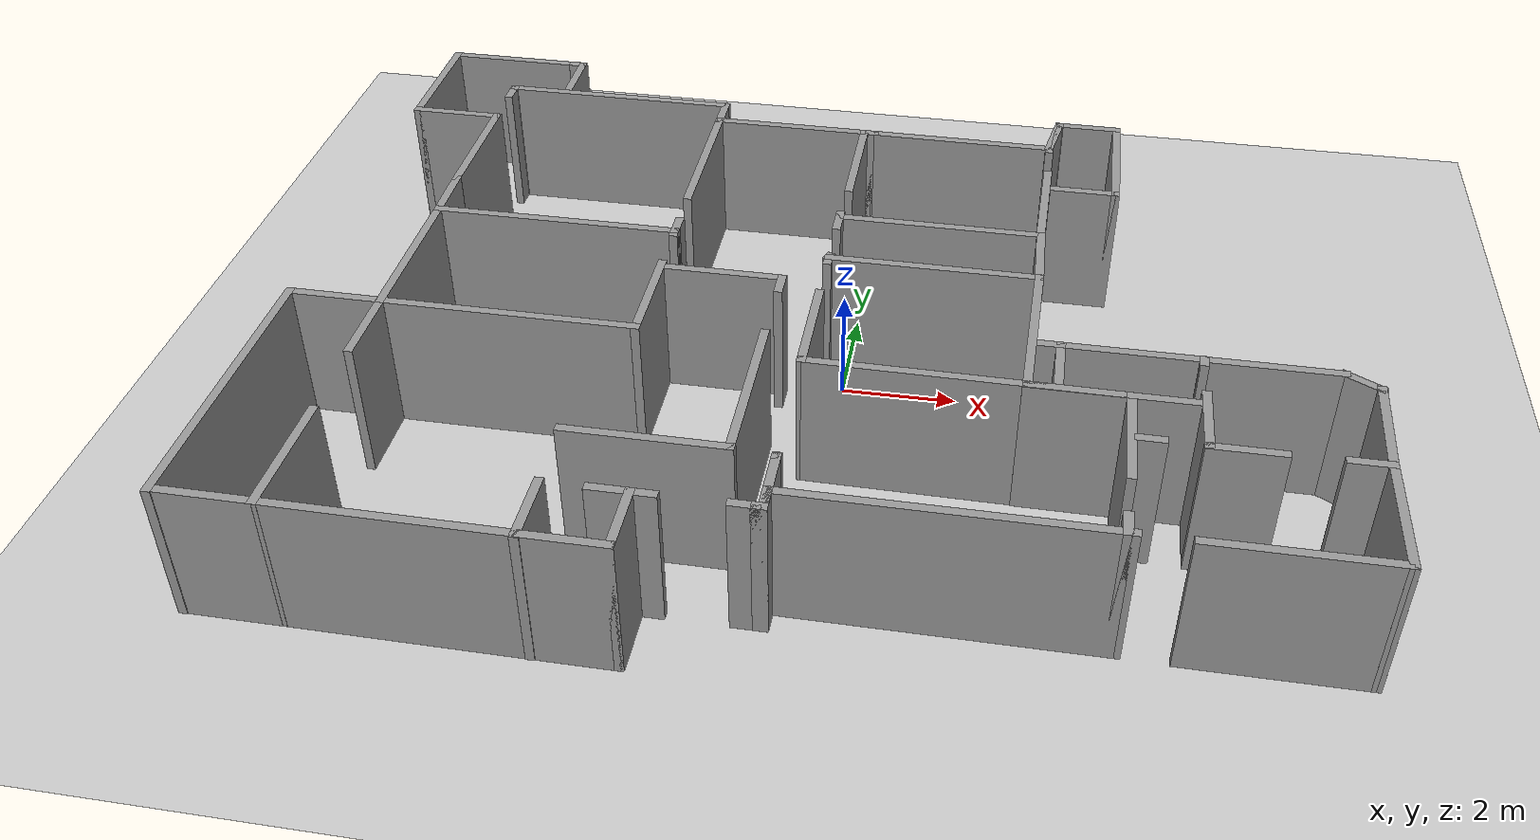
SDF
<sdf version="1.9">
 <world name="default">
  <model name="ground_plane">
   <static>true</static>
   <link name="link">
    <collision name="collision">
     <geometry><plane><normal>0 0 1</normal><size>100 100</size></plane></geometry>
     <surface><friction><ode><mu>100</mu><mu2>50</mu2></ode></friction></surface>
    </collision>
    <visual name="visual">
     <cast_shadows>false</cast_shadows>
     <geometry><plane><normal>0 0 1</normal><size>100 100</size></plane></geometry>
     <material>
      <script><uri>file://media/materials/scripts/gazebo.material</uri><name>Gazebo/Grey</name></script>
     </material>
    </visual>
   </link>
  </model>
  <model name="Escritorio_MA">
   <pose>-0.24854000000000001 -0.16017000000000001 0 0 0 0</pose>
   <link name="Wall_1">
    <collision name="Wall_1_Collision">
     <geometry><box><size>3.7043900000000001 0.14999999999999999 2.5</size></box></geometry>
     <pose>0 0 1.25 0 0 0</pose>
    </collision>
    <visual name="Wall_1_Visual">
     <pose>0 0 1.25 0 0 0</pose>
     <geometry><box><size>3.7043900000000001 0.14999999999999999 2.5</size></box></geometry>
     <material>
      <script><uri>file://media/materials/scripts/gazebo.material</uri><name>Gazebo/Grey</name></script>
      <ambient>1 1 1 1</ambient>
     </material>
    </visual>
    <pose>1.66391 -2.2454200000000002 0 0 0 -0.0065599999999999999</pose>
   </link>
   <link name="Wall_10">
    <collision name="Wall_10_Collision">
     <geometry><box><size>0.5 0.14999999999999999 2.5</size></box></geometry>
     <pose>0 0 1.25 0 0 0</pose>
    </collision>
    <visual name="Wall_10_Visual">
     <pose>0 0 1.25 0 0 0</pose>
     <geometry><box><size>0.5 0.14999999999999999 2.5</size></box></geometry>
     <material>
      <script><uri>file://media/materials/scripts/gazebo.material</uri><name>Gazebo/Grey</name></script>
      <ambient>1 1 1 1</ambient>
     </material>
    </visual>
    <pose>-0.113251 1.7912399999999999 0 0 0 -1.5708</pose>
   </link>
   <link name="Wall_100">
    <collision name="Wall_100_Collision">
     <geometry><box><size>0.5 0.14999999999999999 2.5</size></box></geometry>
     <pose>0 0 1.25 0 0 0</pose>
    </collision>
    <visual name="Wall_100_Visual">
     <pose>0 0 1.25 0 0 0</pose>
     <geometry><box><size>0.5 0.14999999999999999 2.5</size></box></geometry>
     <material>
      <script><uri>file://media/materials/scripts/gazebo.material</uri><name>Gazebo/Grey</name></script>
      <ambient>1 1 1 1</ambient>
     </material>
    </visual>
    <pose>5.00115 -5.1295099999999998 0 0 0 1.5708</pose>
   </link>
   <link name="Wall_102">
    <collision name="Wall_102_Collision">
     <geometry><box><size>2 0.14999999999999999 2.5</size></box></geometry>
     <pose>0 0 1.25 0 0 0</pose>
    </collision>
    <visual name="Wall_102_Visual">
     <pose>0 0 1.25 0 0 0</pose>
     <geometry><box><size>2 0.14999999999999999 2.5</size></box></geometry>
     <material>
      <script><uri>file://media/materials/scripts/gazebo.material</uri><name>Gazebo/Grey</name></script>
      <ambient>1 1 1 1</ambient>
     </material>
    </visual>
    <pose>5.0410599999999999 -3.1972 0 0 0 1.5708</pose>
   </link>
   <link name="Wall_103">
    <collision name="Wall_103_Collision">
     <geometry><box><size>1.75007 0.14999999999999999 2.5</size></box></geometry>
     <pose>0 0 1.25 0 0 0</pose>
    </collision>
    <visual name="Wall_103_Visual">
     <pose>0 0 1.25 0 0 0</pose>
     <geometry><box><size>1.75007 0.14999999999999999 2.5</size></box></geometry>
     <material>
      <script><uri>file://media/materials/scripts/gazebo.material</uri><name>Gazebo/Grey</name></script>
      <ambient>1 1 1 1</ambient>
     </material>
    </visual>
    <pose>4.2410600000000001 -2.26464 0 0 0 3.1321400000000001</pose>
   </link>
   <link name="Wall_104">
    <collision name="Wall_104_Collision">
     <geometry><box><size>1.75 0.14999999999999999 2.5</size></box></geometry>
     <pose>0 0 1.25 0 0 0</pose>
    </collision>
    <visual name="Wall_104_Visual">
     <pose>0 0 1.25 0 0 0</pose>
     <geometry><box><size>1.75 0.14999999999999999 2.5</size></box></geometry>
     <material>
      <script><uri>file://media/materials/scripts/gazebo.material</uri><name>Gazebo/Grey</name></script>
      <ambient>1 1 1 1</ambient>
     </material>
    </visual>
    <pose>4.2410600000000001 -2.2722000000000002 0 0 0 0</pose>
   </link>
   <link name="Wall_105">
    <collision name="Wall_105_Collision">
     <geometry><box><size>0.14999999999999999 0.14999999999999999 2.5</size></box></geometry>
     <pose>0 0 1.25 0 0 0</pose>
    </collision>
    <visual name="Wall_105_Visual">
     <pose>0 0 1.25 0 0 0</pose>
     <geometry><box><size>0.14999999999999999 0.14999999999999999 2.5</size></box></geometry>
     <material>
      <script><uri>file://media/materials/scripts/gazebo.material</uri><name>Gazebo/Grey</name></script>
      <ambient>1 1 1 1</ambient>
     </material>
    </visual>
    <pose>5.0410599999999999 -2.2722000000000002 0 0 0 0</pose>
   </link>
   <link name="Wall_107">
    <collision name="Wall_107_Collision">
     <geometry><box><size>0.25 0.14999999999999999 2.5</size></box></geometry>
     <pose>0 0 1.25 0 0 0</pose>
    </collision>
    <visual name="Wall_107_Visual">
     <pose>0 0 1.25 0 0 0</pose>
     <geometry><box><size>0.25 0.14999999999999999 2.5</size></box></geometry>
     <material>
      <script><uri>file://media/materials/scripts/gazebo.material</uri><name>Gazebo/Grey</name></script>
      <ambient>1 1 1 1</ambient>
     </material>
    </visual>
    <pose>5.0511499999999998 -5.3045099999999996 0 0 0 0</pose>
   </link>
   <link name="Wall_109">
    <collision name="Wall_109_Collision">
     <geometry><box><size>3 0.14999999999999999 2.5</size></box></geometry>
     <pose>0 0 1.25 0 0 0</pose>
    </collision>
    <visual name="Wall_109_Visual">
     <pose>0 0 1.25 0 0 0</pose>
     <geometry><box><size>3 0.14999999999999999 2.5</size></box></geometry>
     <material>
      <script><uri>file://media/materials/scripts/gazebo.material</uri><name>Gazebo/Grey</name></script>
      <ambient>1 1 1 1</ambient>
     </material>
    </visual>
    <pose>7.40069 -5.3172699999999997 0 0 0 0</pose>
   </link>
   <link name="Wall_110">
    <collision name="Wall_110_Collision">
     <geometry><box><size>2.2197499999999999 0.14999999999999999 2.5</size></box></geometry>
     <pose>0 0 1.25 0 0 0</pose>
    </collision>
    <visual name="Wall_110_Visual">
     <pose>0 0 1.25 0 0 0</pose>
     <geometry><box><size>2.2197499999999999 0.14999999999999999 2.5</size></box></geometry>
     <material>
      <script><uri>file://media/materials/scripts/gazebo.material</uri><name>Gazebo/Grey</name></script>
      <ambient>1 1 1 1</ambient>
     </material>
    </visual>
    <pose>8.8162400000000005 -4.2824400000000002 0 0 0 1.5799300000000001</pose>
   </link>
   <link name="Wall_111">
    <collision name="Wall_111_Collision">
     <geometry><box><size>0.75 0.14999999999999999 2.5</size></box></geometry>
     <pose>0 0 1.25 0 0 0</pose>
    </collision>
    <visual name="Wall_111_Visual">
     <pose>0 0 1.25 0 0 0</pose>
     <geometry><box><size>0.75 0.14999999999999999 2.5</size></box></geometry>
     <material>
      <script><uri>file://media/materials/scripts/gazebo.material</uri><name>Gazebo/Grey</name></script>
      <ambient>1 1 1 1</ambient>
     </material>
    </visual>
    <pose>8.5067900000000005 -3.2476099999999999 0 0 0 3.1415899999999999</pose>
   </link>
   <link name="Wall_113">
    <collision name="Wall_113_Collision">
     <geometry><box><size>1.25 0.14999999999999999 2.5</size></box></geometry>
     <pose>0 0 1.25 0 0 0</pose>
    </collision>
    <visual name="Wall_113_Visual">
     <pose>0 0 1.25 0 0 0</pose>
     <geometry><box><size>1.25 0.14999999999999999 2.5</size></box></geometry>
     <material>
      <script><uri>file://media/materials/scripts/gazebo.material</uri><name>Gazebo/Grey</name></script>
      <ambient>1 1 1 1</ambient>
     </material>
    </visual>
    <pose>6.7285300000000001 -3.2660200000000001 0 0 0 3.1415899999999999</pose>
   </link>
   <link name="Wall_115">
    <collision name="Wall_115_Collision">
     <geometry><box><size>0.5 0.14999999999999999 2.5</size></box></geometry>
     <pose>0 0 1.25 0 0 0</pose>
    </collision>
    <visual name="Wall_115_Visual">
     <pose>0 0 1.25 0 0 0</pose>
     <geometry><box><size>0.5 0.14999999999999999 2.5</size></box></geometry>
     <material>
      <script><uri>file://media/materials/scripts/gazebo.material</uri><name>Gazebo/Grey</name></script>
      <ambient>1 1 1 1</ambient>
     </material>
    </visual>
    <pose>5.3307099999999998 -3.2433999999999998 0 0 0 0</pose>
   </link>
   <link name="Wall_117">
    <collision name="Wall_117_Collision">
     <geometry><box><size>1.25 0.14999999999999999 2.5</size></box></geometry>
     <pose>0 0 1.25 0 0 0</pose>
    </collision>
    <visual name="Wall_117_Visual">
     <pose>0 0 1.25 0 0 0</pose>
     <geometry><box><size>1.25 0.14999999999999999 2.5</size></box></geometry>
     <material>
      <script><uri>file://media/materials/scripts/gazebo.material</uri><name>Gazebo/Grey</name></script>
      <ambient>1 1 1 1</ambient>
     </material>
    </visual>
    <pose>3.9189799999999999 -1.72001 0 0 0 1.5708</pose>
   </link>
   <link name="Wall_118">
    <collision name="Wall_118_Collision">
     <geometry><box><size>4.5618600000000002 0.14999999999999999 2.5</size></box></geometry>
     <pose>0 0 1.25 0 0 0</pose>
    </collision>
    <visual name="Wall_118_Visual">
     <pose>0 0 1.25 0 0 0</pose>
     <geometry><box><size>4.5618600000000002 0.14999999999999999 2.5</size></box></geometry>
     <material>
      <script><uri>file://media/materials/scripts/gazebo.material</uri><name>Gazebo/Grey</name></script>
      <ambient>1 1 1 1</ambient>
     </material>
    </visual>
    <pose>6.1249099999999999 -1.17038 0 0 0 -0.00016699999999999997</pose>
   </link>
   <link name="Wall_119">
    <collision name="Wall_119_Collision">
     <geometry><box><size>0.75 0.14999999999999999 2.5</size></box></geometry>
     <pose>0 0 1.25 0 0 0</pose>
    </collision>
    <visual name="Wall_119_Visual">
     <pose>0 0 1.25 0 0 0</pose>
     <geometry><box><size>0.75 0.14999999999999999 2.5</size></box></geometry>
     <material>
      <script><uri>file://media/materials/scripts/gazebo.material</uri><name>Gazebo/Grey</name></script>
      <ambient>1 1 1 1</ambient>
     </material>
    </visual>
    <pose>8.5906500000000001 -1.3207500000000001 0 0 0 -0.52359900000000004</pose>
   </link>
   <link name="Wall_12">
    <collision name="Wall_12_Collision">
     <geometry><box><size>0.20821600000000001 0.14999999999999999 2.5</size></box></geometry>
     <pose>0 0 1.25 0 0 0</pose>
    </collision>
    <visual name="Wall_12_Visual">
     <pose>0 0 1.25 0 0 0</pose>
     <geometry><box><size>0.20821600000000001 0.14999999999999999 2.5</size></box></geometry>
     <material>
      <script><uri>file://media/materials/scripts/gazebo.material</uri><name>Gazebo/Grey</name></script>
      <ambient>1 1 1 1</ambient>
     </material>
    </visual>
    <pose>-0.10619000000000001 0.68901100000000004 0 0 0 1.2095900000000002</pose>
   </link>
   <link name="Wall_120">
    <collision name="Wall_120_Collision">
     <geometry><box><size>1.9274 0.14999999999999999 2.5</size></box></geometry>
     <pose>0 0 1.25 0 0 0</pose>
    </collision>
    <visual name="Wall_120_Visual">
     <pose>0 0 1.25 0 0 0</pose>
     <geometry><box><size>1.9274 0.14999999999999999 2.5</size></box></geometry>
     <material>
      <script><uri>file://media/materials/scripts/gazebo.material</uri><name>Gazebo/Grey</name></script>
      <ambient>1 1 1 1</ambient>
     </material>
    </visual>
    <pose>8.8286200000000008 -2.3591799999999998 0 0 0 -1.59537</pose>
   </link>
   <link name="Wall_123">
    <collision name="Wall_123_Collision">
     <geometry><box><size>1.3592 0.14999999999999999 2.5</size></box></geometry>
     <pose>0 0 1.25 0 0 0</pose>
    </collision>
    <visual name="Wall_123_Visual">
     <pose>0 0 1.25 0 0 0</pose>
     <geometry><box><size>1.3592 0.14999999999999999 2.5</size></box></geometry>
     <material>
      <script><uri>file://media/materials/scripts/gazebo.material</uri><name>Gazebo/Grey</name></script>
      <ambient>1 1 1 1</ambient>
     </material>
    </visual>
    <pose>6.1785300000000003 -2.6413099999999998 0 0 0 1.5708</pose>
   </link>
   <link name="Wall_125">
    <collision name="Wall_125_Collision">
     <geometry><box><size>1.25 0.14999999999999999 2.5</size></box></geometry>
     <pose>0 0 1.25 0 0 0</pose>
    </collision>
    <visual name="Wall_125_Visual">
     <pose>0 0 1.25 0 0 0</pose>
     <geometry><box><size>1.25 0.14999999999999999 2.5</size></box></geometry>
     <material>
      <script><uri>file://media/materials/scripts/gazebo.material</uri><name>Gazebo/Grey</name></script>
      <ambient>1 1 1 1</ambient>
     </material>
    </visual>
    <pose>5.5910700000000002 -2.2722000000000002 0 0 0 0</pose>
   </link>
   <link name="Wall_127">
    <collision name="Wall_127_Collision">
     <geometry><box><size>0.25 0.14999999999999999 2.5</size></box></geometry>
     <pose>0 0 1.25 0 0 0</pose>
    </collision>
    <visual name="Wall_127_Visual">
     <pose>0 0 1.25 0 0 0</pose>
     <geometry><box><size>0.25 0.14999999999999999 2.5</size></box></geometry>
     <material>
      <script><uri>file://media/materials/scripts/gazebo.material</uri><name>Gazebo/Grey</name></script>
      <ambient>1 1 1 1</ambient>
     </material>
    </visual>
    <pose>6.1668500000000002 -1.21278 0 0 0 -1.5708</pose>
   </link>
   <link name="Wall_128">
    <collision name="Wall_128_Collision">
     <geometry><box><size>0.25 0.14999999999999999 2.5</size></box></geometry>
     <pose>0 0 1.25 0 0 0</pose>
    </collision>
    <visual name="Wall_128_Visual">
     <pose>0 0 1.25 0 0 0</pose>
     <geometry><box><size>0.25 0.14999999999999999 2.5</size></box></geometry>
     <material>
      <script><uri>file://media/materials/scripts/gazebo.material</uri><name>Gazebo/Grey</name></script>
      <ambient>1 1 1 1</ambient>
     </material>
    </visual>
    <pose>6.1668500000000002 -1.21278 0 0 0 1.5708</pose>
   </link>
   <link name="Wall_131">
    <collision name="Wall_131_Collision">
     <geometry><box><size>0.5 0.14999999999999999 2.5</size></box></geometry>
     <pose>0 0 1.25 0 0 0</pose>
    </collision>
    <visual name="Wall_131_Visual">
     <pose>0 0 1.25 0 0 0</pose>
     <geometry><box><size>0.5 0.14999999999999999 2.5</size></box></geometry>
     <material>
      <script><uri>file://media/materials/scripts/gazebo.material</uri><name>Gazebo/Grey</name></script>
      <ambient>1 1 1 1</ambient>
     </material>
    </visual>
    <pose>3.7439800000000001 -1.17001 0 0 0 3.1415899999999999</pose>
   </link>
   <link name="Wall_133">
    <collision name="Wall_133_Collision">
     <geometry><box><size>1.25 0.14999999999999999 2.5</size></box></geometry>
     <pose>0 0 1.25 0 0 0</pose>
    </collision>
    <visual name="Wall_133_Visual">
     <pose>0 0 1.25 0 0 0</pose>
     <geometry><box><size>1.25 0.14999999999999999 2.5</size></box></geometry>
     <material>
      <script><uri>file://media/materials/scripts/gazebo.material</uri><name>Gazebo/Grey</name></script>
      <ambient>1 1 1 1</ambient>
     </material>
    </visual>
    <pose>4.1825400000000004 3.5538500000000002 0 0 0 0</pose>
   </link>
   <link name="Wall_134">
    <collision name="Wall_134_Collision">
     <geometry><box><size>2.5 0.14999999999999999 2.5</size></box></geometry>
     <pose>0 0 1.25 0 0 0</pose>
    </collision>
    <visual name="Wall_134_Visual">
     <pose>0 0 1.25 0 0 0</pose>
     <geometry><box><size>2.5 0.14999999999999999 2.5</size></box></geometry>
     <material>
      <script><uri>file://media/materials/scripts/gazebo.material</uri><name>Gazebo/Grey</name></script>
      <ambient>1 1 1 1</ambient>
     </material>
    </visual>
    <pose>4.7325400000000002 4.7288500000000004 0 0 0 1.5708</pose>
   </link>
   <link name="Wall_135">
    <collision name="Wall_135_Collision">
     <geometry><box><size>1.25 0.14999999999999999 2.5</size></box></geometry>
     <pose>0 0 1.25 0 0 0</pose>
    </collision>
    <visual name="Wall_135_Visual">
     <pose>0 0 1.25 0 0 0</pose>
     <geometry><box><size>1.25 0.14999999999999999 2.5</size></box></geometry>
     <material>
      <script><uri>file://media/materials/scripts/gazebo.material</uri><name>Gazebo/Grey</name></script>
      <ambient>1 1 1 1</ambient>
     </material>
    </visual>
    <pose>4.1825400000000004 5.9038500000000003 0 0 0 3.1415899999999999</pose>
   </link>
   <link name="Wall_136">
    <collision name="Wall_136_Collision">
     <geometry><box><size>1.0866 0.14999999999999999 2.5</size></box></geometry>
     <pose>0 0 1.25 0 0 0</pose>
    </collision>
    <visual name="Wall_136_Visual">
     <pose>0 0 1.25 0 0 0</pose>
     <geometry><box><size>1.0866 0.14999999999999999 2.5</size></box></geometry>
     <material>
      <script><uri>file://media/materials/scripts/gazebo.material</uri><name>Gazebo/Grey</name></script>
      <ambient>1 1 1 1</ambient>
     </material>
    </visual>
    <pose>3.55213 5.4424999999999999 0 0 0 -1.74336</pose>
   </link>
   <link name="Wall_137">
    <collision name="Wall_137_Collision">
     <geometry><box><size>1.08165 0.14999999999999999 2.5</size></box></geometry>
     <pose>0 0 1.25 0 0 0</pose>
    </collision>
    <visual name="Wall_137_Visual">
     <pose>0 0 1.25 0 0 0</pose>
     <geometry><box><size>1.08165 0.14999999999999999 2.5</size></box></geometry>
     <material>
      <script><uri>file://media/materials/scripts/gazebo.material</uri><name>Gazebo/Grey</name></script>
      <ambient>1 1 1 1</ambient>
     </material>
    </visual>
    <pose>3.55213 5.4450200000000004 0 0 0 1.3973100000000001</pose>
   </link>
   <link name="Wall_138">
    <collision name="Wall_138_Collision">
     <geometry><box><size>0.14999999999999999 0.14999999999999999 2.5</size></box></geometry>
     <pose>0 0 1.25 0 0 0</pose>
    </collision>
    <visual name="Wall_138_Visual">
     <pose>0 0 1.25 0 0 0</pose>
     <geometry><box><size>0.14999999999999999 0.14999999999999999 2.5</size></box></geometry>
     <material>
      <script><uri>file://media/materials/scripts/gazebo.material</uri><name>Gazebo/Grey</name></script>
      <ambient>1 1 1 1</ambient>
     </material>
    </visual>
    <pose>3.6325400000000001 5.9038500000000003 0 0 0 0</pose>
   </link>
   <link name="Wall_139">
    <collision name="Wall_139_Collision">
     <geometry><box><size>0.14999999999999999 0.14999999999999999 2.5</size></box></geometry>
     <pose>0 0 1.25 0 0 0</pose>
    </collision>
    <visual name="Wall_139_Visual">
     <pose>0 0 1.25 0 0 0</pose>
     <geometry><box><size>0.14999999999999999 0.14999999999999999 2.5</size></box></geometry>
     <material>
      <script><uri>file://media/materials/scripts/gazebo.material</uri><name>Gazebo/Grey</name></script>
      <ambient>1 1 1 1</ambient>
     </material>
    </visual>
    <pose>3.6325400000000001 5.9038500000000003 0 0 0 0</pose>
   </link>
   <link name="Wall_140">
    <collision name="Wall_140_Collision">
     <geometry><box><size>0.14999999999999999 0.14999999999999999 2.5</size></box></geometry>
     <pose>0 0 1.25 0 0 0</pose>
    </collision>
    <visual name="Wall_140_Visual">
     <pose>0 0 1.25 0 0 0</pose>
     <geometry><box><size>0.14999999999999999 0.14999999999999999 2.5</size></box></geometry>
     <material>
      <script><uri>file://media/materials/scripts/gazebo.material</uri><name>Gazebo/Grey</name></script>
      <ambient>1 1 1 1</ambient>
     </material>
    </visual>
    <pose>3.6325400000000001 5.9038500000000003 0 0 0 0</pose>
   </link>
   <link name="Wall_15">
    <collision name="Wall_15_Collision">
     <geometry><box><size>0.14999999999999999 0.14999999999999999 2.5</size></box></geometry>
     <pose>0 0 1.25 0 0 0</pose>
    </collision>
    <visual name="Wall_15_Visual">
     <pose>0 0 1.25 0 0 0</pose>
     <geometry><box><size>0.14999999999999999 0.14999999999999999 2.5</size></box></geometry>
     <material>
      <script><uri>file://media/materials/scripts/gazebo.material</uri><name>Gazebo/Grey</name></script>
      <ambient>1 1 1 1</ambient>
     </material>
    </visual>
    <pose>-0.113251 1.96624 0 0 0 0</pose>
   </link>
   <link name="Wall_16">
    <collision name="Wall_16_Collision">
     <geometry><box><size>0.14999999999999999 0.14999999999999999 2.5</size></box></geometry>
     <pose>0 0 1.25 0 0 0</pose>
    </collision>
    <visual name="Wall_16_Visual">
     <pose>0 0 1.25 0 0 0</pose>
     <geometry><box><size>0.14999999999999999 0.14999999999999999 2.5</size></box></geometry>
     <material>
      <script><uri>file://media/materials/scripts/gazebo.material</uri><name>Gazebo/Grey</name></script>
      <ambient>1 1 1 1</ambient>
     </material>
    </visual>
    <pose>-0.113251 1.96624 0 0 0 0</pose>
   </link>
   <link name="Wall_18">
    <collision name="Wall_18_Collision">
     <geometry><box><size>0.14999999999999999 0.14999999999999999 2.5</size></box></geometry>
     <pose>0 0 1.25 0 0 0</pose>
    </collision>
    <visual name="Wall_18_Visual">
     <pose>0 0 1.25 0 0 0</pose>
     <geometry><box><size>0.14999999999999999 0.14999999999999999 2.5</size></box></geometry>
     <material>
      <script><uri>file://media/materials/scripts/gazebo.material</uri><name>Gazebo/Grey</name></script>
      <ambient>1 1 1 1</ambient>
     </material>
    </visual>
    <pose>-0.113251 1.96624 0 0 0 0</pose>
   </link>
   <link name="Wall_2">
    <collision name="Wall_2_Collision">
     <geometry><box><size>3.0692599999999999 0.14999999999999999 2.5</size></box></geometry>
     <pose>0 0 1.25 0 0 0</pose>
    </collision>
    <visual name="Wall_2_Visual">
     <pose>0 0 1.25 0 0 0</pose>
     <geometry><box><size>3.0692599999999999 0.14999999999999999 2.5</size></box></geometry>
     <material>
      <script><uri>file://media/materials/scripts/gazebo.material</uri><name>Gazebo/Grey</name></script>
      <ambient>1 1 1 1</ambient>
     </material>
    </visual>
    <pose>3.4651800000000001 -0.79764699999999999 0 0 0 1.55427</pose>
   </link>
   <link name="Wall_20">
    <collision name="Wall_20_Collision">
     <geometry><box><size>0.14999999999999999 0.14999999999999999 2.5</size></box></geometry>
     <pose>0 0 1.25 0 0 0</pose>
    </collision>
    <visual name="Wall_20_Visual">
     <pose>0 0 1.25 0 0 0</pose>
     <geometry><box><size>0.14999999999999999 0.14999999999999999 2.5</size></box></geometry>
     <material>
      <script><uri>file://media/materials/scripts/gazebo.material</uri><name>Gazebo/Grey</name></script>
      <ambient>1 1 1 1</ambient>
     </material>
    </visual>
    <pose>-0.113251 1.96624 0 0 0 0</pose>
   </link>
   <link name="Wall_21">
    <collision name="Wall_21_Collision">
     <geometry><box><size>0.14999999999999999 0.14999999999999999 2.5</size></box></geometry>
     <pose>0 0 1.25 0 0 0</pose>
    </collision>
    <visual name="Wall_21_Visual">
     <pose>0 0 1.25 0 0 0</pose>
     <geometry><box><size>0.14999999999999999 0.14999999999999999 2.5</size></box></geometry>
     <material>
      <script><uri>file://media/materials/scripts/gazebo.material</uri><name>Gazebo/Grey</name></script>
      <ambient>1 1 1 1</ambient>
     </material>
    </visual>
    <pose>-0.113251 1.96624 0 0 0 0</pose>
   </link>
   <link name="Wall_22">
    <collision name="Wall_22_Collision">
     <geometry><box><size>0.25 0.14999999999999999 2.5</size></box></geometry>
     <pose>0 0 1.25 0 0 0</pose>
    </collision>
    <visual name="Wall_22_Visual">
     <pose>0 0 1.25 0 0 0</pose>
     <geometry><box><size>0.25 0.14999999999999999 2.5</size></box></geometry>
     <material>
      <script><uri>file://media/materials/scripts/gazebo.material</uri><name>Gazebo/Grey</name></script>
      <ambient>1 1 1 1</ambient>
     </material>
    </visual>
    <pose>-0.113251 2.0162399999999998 0 0 0 1.5708</pose>
   </link>
   <link name="Wall_24">
    <collision name="Wall_24_Collision">
     <geometry><box><size>2.2560699999999998 0.14999999999999999 2.5</size></box></geometry>
     <pose>0 0 1.25 0 0 0</pose>
    </collision>
    <visual name="Wall_24_Visual">
     <pose>0 0 1.25 0 0 0</pose>
     <geometry><box><size>2.2560699999999998 0.14999999999999999 2.5</size></box></geometry>
     <material>
      <script><uri>file://media/materials/scripts/gazebo.material</uri><name>Gazebo/Grey</name></script>
      <ambient>1 1 1 1</ambient>
     </material>
    </visual>
    <pose>3.4693999999999998 3.01335 0 0 0 1.5543199999999999</pose>
   </link>
   <link name="Wall_27">
    <collision name="Wall_27_Collision">
     <geometry><box><size>0.235064 0.14999999999999999 2.5</size></box></geometry>
     <pose>0 0 1.25 0 0 0</pose>
    </collision>
    <visual name="Wall_27_Visual">
     <pose>0 0 1.25 0 0 0</pose>
     <geometry><box><size>0.235064 0.14999999999999999 2.5</size></box></geometry>
     <material>
      <script><uri>file://media/materials/scripts/gazebo.material</uri><name>Gazebo/Grey</name></script>
      <ambient>1 1 1 1</ambient>
     </material>
    </visual>
    <pose>3.47424 4.9386999999999999 0 0 0 1.6299399999999999</pose>
   </link>
   <link name="Wall_28">
    <collision name="Wall_28_Collision">
     <geometry><box><size>3.4954299999999998 0.14999999999999999 2.5</size></box></geometry>
     <pose>0 0 1.25 0 0 0</pose>
    </collision>
    <visual name="Wall_28_Visual">
     <pose>0 0 1.25 0 0 0</pose>
     <geometry><box><size>3.4954299999999998 0.14999999999999999 2.5</size></box></geometry>
     <material>
      <script><uri>file://media/materials/scripts/gazebo.material</uri><name>Gazebo/Grey</name></script>
      <ambient>1 1 1 1</ambient>
     </material>
    </visual>
    <pose>1.7992300000000001 4.9886999999999997 0 0 0 3.1370800000000001</pose>
   </link>
   <link name="Wall_29">
    <collision name="Wall_29_Collision">
     <geometry><box><size>0.25 0.14999999999999999 2.5</size></box></geometry>
     <pose>0 0 1.25 0 0 0</pose>
    </collision>
    <visual name="Wall_29_Visual">
     <pose>0 0 1.25 0 0 0</pose>
     <geometry><box><size>0.25 0.14999999999999999 2.5</size></box></geometry>
     <material>
      <script><uri>file://media/materials/scripts/gazebo.material</uri><name>Gazebo/Grey</name></script>
      <ambient>1 1 1 1</ambient>
     </material>
    </visual>
    <pose>0.076748999999999998 4.9962400000000002 0 0 0 3.1415899999999999</pose>
   </link>
   <link name="Wall_3">
    <collision name="Wall_3_Collision">
     <geometry><box><size>3.75 0.14999999999999999 2.5</size></box></geometry>
     <pose>0 0 1.25 0 0 0</pose>
    </collision>
    <visual name="Wall_3_Visual">
     <pose>0 0 1.25 0 0 0</pose>
     <geometry><box><size>3.75 0.14999999999999999 2.5</size></box></geometry>
     <material>
      <script><uri>file://media/materials/scripts/gazebo.material</uri><name>Gazebo/Grey</name></script>
      <ambient>1 1 1 1</ambient>
     </material>
    </visual>
    <pose>1.6893100000000001 0.66178199999999998 0 0 0 3.1415899999999999</pose>
   </link>
   <link name="Wall_30">
    <collision name="Wall_30_Collision">
     <geometry><box><size>0.25 0.14999999999999999 2.5</size></box></geometry>
     <pose>0 0 1.25 0 0 0</pose>
    </collision>
    <visual name="Wall_30_Visual">
     <pose>0 0 1.25 0 0 0</pose>
     <geometry><box><size>0.25 0.14999999999999999 2.5</size></box></geometry>
     <material>
      <script><uri>file://media/materials/scripts/gazebo.material</uri><name>Gazebo/Grey</name></script>
      <ambient>1 1 1 1</ambient>
     </material>
    </visual>
    <pose>-0.023251000000000001 4.9962400000000002 0 0 0 3.1415899999999999</pose>
   </link>
   <link name="Wall_31">
    <collision name="Wall_31_Collision">
     <geometry><box><size>2.25 0.14999999999999999 2.5</size></box></geometry>
     <pose>0 0 1.25 0 0 0</pose>
    </collision>
    <visual name="Wall_31_Visual">
     <pose>0 0 1.25 0 0 0</pose>
     <geometry><box><size>2.25 0.14999999999999999 2.5</size></box></geometry>
     <material>
      <script><uri>file://media/materials/scripts/gazebo.material</uri><name>Gazebo/Grey</name></script>
      <ambient>1 1 1 1</ambient>
     </material>
    </visual>
    <pose>-0.073250999999999997 3.94624 0 0 0 -1.5708</pose>
   </link>
   <link name="Wall_33">
    <collision name="Wall_33_Collision">
     <geometry><box><size>3 0.14999999999999999 2.5</size></box></geometry>
     <pose>0 0 1.25 0 0 0</pose>
    </collision>
    <visual name="Wall_33_Visual">
     <pose>0 0 1.25 0 0 0</pose>
     <geometry><box><size>3 0.14999999999999999 2.5</size></box></geometry>
     <material>
      <script><uri>file://media/materials/scripts/gazebo.material</uri><name>Gazebo/Grey</name></script>
      <ambient>1 1 1 1</ambient>
     </material>
    </visual>
    <pose>-1.4982500000000001 4.9962400000000002 0 0 0 3.1415899999999999</pose>
   </link>
   <link name="Wall_35">
    <collision name="Wall_35_Collision">
     <geometry><box><size>3 0.14999999999999999 2.5</size></box></geometry>
     <pose>0 0 1.25 0 0 0</pose>
    </collision>
    <visual name="Wall_35_Visual">
     <pose>0 0 1.25 0 0 0</pose>
     <geometry><box><size>3 0.14999999999999999 2.5</size></box></geometry>
     <material>
      <script><uri>file://media/materials/scripts/gazebo.material</uri><name>Gazebo/Grey</name></script>
      <ambient>1 1 1 1</ambient>
     </material>
    </visual>
    <pose>-2.9232499999999999 3.57124 0 0 0 -1.5708</pose>
   </link>
   <link name="Wall_37">
    <collision name="Wall_37_Collision">
     <geometry><box><size>0.75 0.14999999999999999 2.5</size></box></geometry>
     <pose>0 0 1.25 0 0 0</pose>
    </collision>
    <visual name="Wall_37_Visual">
     <pose>0 0 1.25 0 0 0</pose>
     <geometry><box><size>0.75 0.14999999999999999 2.5</size></box></geometry>
     <material>
      <script><uri>file://media/materials/scripts/gazebo.material</uri><name>Gazebo/Grey</name></script>
      <ambient>1 1 1 1</ambient>
     </material>
    </visual>
    <pose>-2.9232499999999999 5.2962400000000001 0 0 0 1.5708</pose>
   </link>
   <link name="Wall_38">
    <collision name="Wall_38_Collision">
     <geometry><box><size>4.5 0.14999999999999999 2.5</size></box></geometry>
     <pose>0 0 1.25 0 0 0</pose>
    </collision>
    <visual name="Wall_38_Visual">
     <pose>0 0 1.25 0 0 0</pose>
     <geometry><box><size>4.5 0.14999999999999999 2.5</size></box></geometry>
     <material>
      <script><uri>file://media/materials/scripts/gazebo.material</uri><name>Gazebo/Grey</name></script>
      <ambient>1 1 1 1</ambient>
     </material>
    </visual>
    <pose>-5.0982500000000002 5.5962399999999999 0 0 0 3.1415899999999999</pose>
   </link>
   <link name="Wall_39">
    <collision name="Wall_39_Collision">
     <geometry><box><size>0.16 0.14999999999999999 2.5</size></box></geometry>
     <pose>0 0 1.25 0 0 0</pose>
    </collision>
    <visual name="Wall_39_Visual">
     <pose>0 0 1.25 0 0 0</pose>
     <geometry><box><size>0.16 0.14999999999999999 2.5</size></box></geometry>
     <material>
      <script><uri>file://media/materials/scripts/gazebo.material</uri><name>Gazebo/Grey</name></script>
      <ambient>1 1 1 1</ambient>
     </material>
    </visual>
    <pose>-7.2682500000000001 5.5962399999999999 0 0 0 0</pose>
   </link>
   <link name="Wall_4">
    <collision name="Wall_4_Collision">
     <geometry><box><size>0.29556300000000002 0.14999999999999999 2.5</size></box></geometry>
     <pose>0 0 1.25 0 0 0</pose>
    </collision>
    <visual name="Wall_4_Visual">
     <pose>0 0 1.25 0 0 0</pose>
     <geometry><box><size>0.29556300000000002 0.14999999999999999 2.5</size></box></geometry>
     <material>
      <script><uri>file://media/materials/scripts/gazebo.material</uri><name>Gazebo/Grey</name></script>
      <ambient>1 1 1 1</ambient>
     </material>
    </visual>
    <pose>-0.111972 0.58901099999999995 0 0 0 -1.5883700000000001</pose>
   </link>
   <link name="Wall_41">
    <collision name="Wall_41_Collision">
     <geometry><box><size>0.5 0.14999999999999999 2.5</size></box></geometry>
     <pose>0 0 1.25 0 0 0</pose>
    </collision>
    <visual name="Wall_41_Visual">
     <pose>0 0 1.25 0 0 0</pose>
     <geometry><box><size>0.5 0.14999999999999999 2.5</size></box></geometry>
     <material>
      <script><uri>file://media/materials/scripts/gazebo.material</uri><name>Gazebo/Grey</name></script>
      <ambient>1 1 1 1</ambient>
     </material>
    </visual>
    <pose>-7.27325 5.4212400000000001 0 0 0 -1.5708</pose>
   </link>
   <link name="Wall_43">
    <collision name="Wall_43_Collision">
     <geometry><box><size>2.5 0.14999999999999999 2.5</size></box></geometry>
     <pose>0 0 1.25 0 0 0</pose>
    </collision>
    <visual name="Wall_43_Visual">
     <pose>0 0 1.25 0 0 0</pose>
     <geometry><box><size>2.5 0.14999999999999999 2.5</size></box></geometry>
     <material>
      <script><uri>file://media/materials/scripts/gazebo.material</uri><name>Gazebo/Grey</name></script>
      <ambient>1 1 1 1</ambient>
     </material>
    </visual>
    <pose>-7.2779100000000003 3.25251 0 0 0 -1.5708</pose>
   </link>
   <link name="Wall_46">
    <collision name="Wall_46_Collision">
     <geometry><box><size>0.5 0.14999999999999999 2.5</size></box></geometry>
     <pose>0 0 1.25 0 0 0</pose>
    </collision>
    <visual name="Wall_46_Visual">
     <pose>0 0 1.25 0 0 0</pose>
     <geometry><box><size>0.5 0.14999999999999999 2.5</size></box></geometry>
     <material>
      <script><uri>file://media/materials/scripts/gazebo.material</uri><name>Gazebo/Grey</name></script>
      <ambient>1 1 1 1</ambient>
     </material>
    </visual>
    <pose>-2.9074 1.1976899999999999 0 0 0 -1.5708</pose>
   </link>
   <link name="Wall_47">
    <collision name="Wall_47_Collision">
     <geometry><box><size>4.5 0.14999999999999999 2.5</size></box></geometry>
     <pose>0 0 1.25 0 0 0</pose>
    </collision>
    <visual name="Wall_47_Visual">
     <pose>0 0 1.25 0 0 0</pose>
     <geometry><box><size>4.5 0.14999999999999999 2.5</size></box></geometry>
     <material>
      <script><uri>file://media/materials/scripts/gazebo.material</uri><name>Gazebo/Grey</name></script>
      <ambient>1 1 1 1</ambient>
     </material>
    </visual>
    <pose>-5.0823999999999998 1.0226900000000001 0 0 0 3.1415899999999999</pose>
   </link>
   <link name="Wall_48">
    <collision name="Wall_48_Collision">
     <geometry><box><size>1.20502 0.14999999999999999 2.5</size></box></geometry>
     <pose>0 0 1.25 0 0 0</pose>
    </collision>
    <visual name="Wall_48_Visual">
     <pose>0 0 1.25 0 0 0</pose>
     <geometry><box><size>1.20502 0.14999999999999999 2.5</size></box></geometry>
     <material>
      <script><uri>file://media/materials/scripts/gazebo.material</uri><name>Gazebo/Grey</name></script>
      <ambient>1 1 1 1</ambient>
     </material>
    </visual>
    <pose>-7.2676499999999997 1.5501 0 0 0 1.5902400000000001</pose>
   </link>
   <link name="Wall_51">
    <collision name="Wall_51_Collision">
     <geometry><box><size>1.75 0.14999999999999999 2.5</size></box></geometry>
     <pose>0 0 1.25 0 0 0</pose>
    </collision>
    <visual name="Wall_51_Visual">
     <pose>0 0 1.25 0 0 0</pose>
     <geometry><box><size>1.75 0.14999999999999999 2.5</size></box></geometry>
     <material>
      <script><uri>file://media/materials/scripts/gazebo.material</uri><name>Gazebo/Grey</name></script>
      <ambient>1 1 1 1</ambient>
     </material>
    </visual>
    <pose>-8.0779099999999993 4.4275099999999998 0 0 0 3.1415899999999999</pose>
   </link>
   <link name="Wall_53">
    <collision name="Wall_53_Collision">
     <geometry><box><size>2.5 0.14999999999999999 2.5</size></box></geometry>
     <pose>0 0 1.25 0 0 0</pose>
    </collision>
    <visual name="Wall_53_Visual">
     <pose>0 0 1.25 0 0 0</pose>
     <geometry><box><size>2.5 0.14999999999999999 2.5</size></box></geometry>
     <material>
      <script><uri>file://media/materials/scripts/gazebo.material</uri><name>Gazebo/Grey</name></script>
      <ambient>1 1 1 1</ambient>
     </material>
    </visual>
    <pose>-8.87791 5.6025099999999997 0 0 0 1.5708</pose>
   </link>
   <link name="Wall_54">
    <collision name="Wall_54_Collision">
     <geometry><box><size>2.5 0.14999999999999999 2.5</size></box></geometry>
     <pose>0 0 1.25 0 0 0</pose>
    </collision>
    <visual name="Wall_54_Visual">
     <pose>0 0 1.25 0 0 0</pose>
     <geometry><box><size>2.5 0.14999999999999999 2.5</size></box></geometry>
     <material>
      <script><uri>file://media/materials/scripts/gazebo.material</uri><name>Gazebo/Grey</name></script>
      <ambient>1 1 1 1</ambient>
     </material>
    </visual>
    <pose>-7.7029100000000001 6.7775100000000004 0 0 0 0</pose>
   </link>
   <link name="Wall_55">
    <collision name="Wall_55_Collision">
     <geometry><box><size>0.5 0.14999999999999999 2.5</size></box></geometry>
     <pose>0 0 1.25 0 0 0</pose>
    </collision>
    <visual name="Wall_55_Visual">
     <pose>0 0 1.25 0 0 0</pose>
     <geometry><box><size>0.5 0.14999999999999999 2.5</size></box></geometry>
     <material>
      <script><uri>file://media/materials/scripts/gazebo.material</uri><name>Gazebo/Grey</name></script>
      <ambient>1 1 1 1</ambient>
     </material>
    </visual>
    <pose>-6.3529099999999996 6.7775100000000004 0 0 0 0</pose>
   </link>
   <link name="Wall_56">
    <collision name="Wall_56_Collision">
     <geometry><box><size>1.25 0.14999999999999999 2.5</size></box></geometry>
     <pose>0 0 1.25 0 0 0</pose>
    </collision>
    <visual name="Wall_56_Visual">
     <pose>0 0 1.25 0 0 0</pose>
     <geometry><box><size>1.25 0.14999999999999999 2.5</size></box></geometry>
     <material>
      <script><uri>file://media/materials/scripts/gazebo.material</uri><name>Gazebo/Grey</name></script>
      <ambient>1 1 1 1</ambient>
     </material>
    </visual>
    <pose>-6.1779099999999998 6.2275099999999997 0 0 0 -1.5708</pose>
   </link>
   <link name="Wall_58">
    <collision name="Wall_58_Collision">
     <geometry><box><size>3 0.14999999999999999 2.5</size></box></geometry>
     <pose>0 0 1.25 0 0 0</pose>
    </collision>
    <visual name="Wall_58_Visual">
     <pose>0 0 1.25 0 0 0</pose>
     <geometry><box><size>3 0.14999999999999999 2.5</size></box></geometry>
     <material>
      <script><uri>file://media/materials/scripts/gazebo.material</uri><name>Gazebo/Grey</name></script>
      <ambient>1 1 1 1</ambient>
     </material>
    </visual>
    <pose>-7.2573999999999996 -0.402312 0 0 0 -1.5708</pose>
   </link>
   <link name="Wall_59">
    <collision name="Wall_59_Collision">
     <geometry><box><size>4.5 0.14999999999999999 2.5</size></box></geometry>
     <pose>0 0 1.25 0 0 0</pose>
    </collision>
    <visual name="Wall_59_Visual">
     <pose>0 0 1.25 0 0 0</pose>
     <geometry><box><size>4.5 0.14999999999999999 2.5</size></box></geometry>
     <material>
      <script><uri>file://media/materials/scripts/gazebo.material</uri><name>Gazebo/Grey</name></script>
      <ambient>1 1 1 1</ambient>
     </material>
    </visual>
    <pose>-5.0823999999999998 -1.82731 0 0 0 0</pose>
   </link>
   <link name="Wall_6">
    <collision name="Wall_6_Collision">
     <geometry><box><size>2 0.14999999999999999 2.5</size></box></geometry>
     <pose>0 0 1.25 0 0 0</pose>
    </collision>
    <visual name="Wall_6_Visual">
     <pose>0 0 1.25 0 0 0</pose>
     <geometry><box><size>2 0.14999999999999999 2.5</size></box></geometry>
     <material>
      <script><uri>file://media/materials/scripts/gazebo.material</uri><name>Gazebo/Grey</name></script>
      <ambient>1 1 1 1</ambient>
     </material>
    </visual>
    <pose>-0.113251 -1.3087599999999999 0 0 0 1.5708</pose>
   </link>
   <link name="Wall_60">
    <collision name="Wall_60_Collision">
     <geometry><box><size>2 0.14999999999999999 2.5</size></box></geometry>
     <pose>0 0 1.25 0 0 0</pose>
    </collision>
    <visual name="Wall_60_Visual">
     <pose>0 0 1.25 0 0 0</pose>
     <geometry><box><size>2 0.14999999999999999 2.5</size></box></geometry>
     <material>
      <script><uri>file://media/materials/scripts/gazebo.material</uri><name>Gazebo/Grey</name></script>
      <ambient>1 1 1 1</ambient>
     </material>
    </visual>
    <pose>-2.9074 -0.902312 0 0 0 1.5708</pose>
   </link>
   <link name="Wall_62">
    <collision name="Wall_62_Collision">
     <geometry><box><size>0.25 0.14999999999999999 2.5</size></box></geometry>
     <pose>0 0 1.25 0 0 0</pose>
    </collision>
    <visual name="Wall_62_Visual">
     <pose>0 0 1.25 0 0 0</pose>
     <geometry><box><size>0.25 0.14999999999999999 2.5</size></box></geometry>
     <material>
      <script><uri>file://media/materials/scripts/gazebo.material</uri><name>Gazebo/Grey</name></script>
      <ambient>1 1 1 1</ambient>
     </material>
    </visual>
    <pose>-2.9074 0.972688 0 0 0 -1.5708</pose>
   </link>
   <link name="Wall_69">
    <collision name="Wall_69_Collision">
     <geometry><box><size>0.5 0.14999999999999999 2.5</size></box></geometry>
     <pose>0 0 1.25 0 0 0</pose>
    </collision>
    <visual name="Wall_69_Visual">
     <pose>0 0 1.25 0 0 0</pose>
     <geometry><box><size>0.5 0.14999999999999999 2.5</size></box></geometry>
     <material>
      <script><uri>file://media/materials/scripts/gazebo.material</uri><name>Gazebo/Grey</name></script>
      <ambient>1 1 1 1</ambient>
     </material>
    </visual>
    <pose>-0.79762699999999997 -0.25220300000000001 0 0 0 1.5708</pose>
   </link>
   <link name="Wall_70">
    <collision name="Wall_70_Collision">
     <geometry><box><size>2.25 0.14999999999999999 2.5</size></box></geometry>
     <pose>0 0 1.25 0 0 0</pose>
    </collision>
    <visual name="Wall_70_Visual">
     <pose>0 0 1.25 0 0 0</pose>
     <geometry><box><size>2.25 0.14999999999999999 2.5</size></box></geometry>
     <material>
      <script><uri>file://media/materials/scripts/gazebo.material</uri><name>Gazebo/Grey</name></script>
      <ambient>1 1 1 1</ambient>
     </material>
    </visual>
    <pose>-1.8476300000000001 -0.077202999999999994 0 0 0 3.1415899999999999</pose>
   </link>
   <link name="Wall_73">
    <collision name="Wall_73_Collision">
     <geometry><box><size>3 0.14999999999999999 2.5</size></box></geometry>
     <pose>0 0 1.25 0 0 0</pose>
    </collision>
    <visual name="Wall_73_Visual">
     <pose>0 0 1.25 0 0 0</pose>
     <geometry><box><size>3 0.14999999999999999 2.5</size></box></geometry>
     <material>
      <script><uri>file://media/materials/scripts/gazebo.material</uri><name>Gazebo/Grey</name></script>
      <ambient>1 1 1 1</ambient>
     </material>
    </visual>
    <pose>-0.81335100000000005 -3.0545100000000001 0 0 0 -1.5708</pose>
   </link>
   <link name="Wall_74">
    <collision name="Wall_74_Collision">
     <geometry><box><size>2.75 0.14999999999999999 2.5</size></box></geometry>
     <pose>0 0 1.25 0 0 0</pose>
    </collision>
    <visual name="Wall_74_Visual">
     <pose>0 0 1.25 0 0 0</pose>
     <geometry><box><size>2.75 0.14999999999999999 2.5</size></box></geometry>
     <material>
      <script><uri>file://media/materials/scripts/gazebo.material</uri><name>Gazebo/Grey</name></script>
      <ambient>1 1 1 1</ambient>
     </material>
    </visual>
    <pose>-2.1133500000000001 -4.4795100000000003 0 0 0 3.1415899999999999</pose>
   </link>
   <link name="Wall_76">
    <collision name="Wall_76_Collision">
     <geometry><box><size>1.25 0.14999999999999999 2.5</size></box></geometry>
     <pose>0 0 1.25 0 0 0</pose>
    </collision>
    <visual name="Wall_76_Visual">
     <pose>0 0 1.25 0 0 0</pose>
     <geometry><box><size>1.25 0.14999999999999999 2.5</size></box></geometry>
     <material>
      <script><uri>file://media/materials/scripts/gazebo.material</uri><name>Gazebo/Grey</name></script>
      <ambient>1 1 1 1</ambient>
     </material>
    </visual>
    <pose>-3.3893499999999999 -6.2275099999999997 0 0 0 -1.5708</pose>
   </link>
   <link name="Wall_77">
    <collision name="Wall_77_Collision">
     <geometry><box><size>4.0181699999999996 0.14999999999999999 2.5</size></box></geometry>
     <pose>0 0 1.25 0 0 0</pose>
    </collision>
    <visual name="Wall_77_Visual">
     <pose>0 0 1.25 0 0 0</pose>
     <geometry><box><size>4.0181699999999996 0.14999999999999999 2.5</size></box></geometry>
     <material>
      <script><uri>file://media/materials/scripts/gazebo.material</uri><name>Gazebo/Grey</name></script>
      <ambient>1 1 1 1</ambient>
     </material>
    </visual>
    <pose>-5.3233699999999997 -6.7619100000000003 0 0 0 3.1394700000000002</pose>
   </link>
   <link name="Wall_78">
    <collision name="Wall_78_Collision">
     <geometry><box><size>2.21888 0.14999999999999999 2.5</size></box></geometry>
     <pose>0 0 1.25 0 0 0</pose>
    </collision>
    <visual name="Wall_78_Visual">
     <pose>0 0 1.25 0 0 0</pose>
     <geometry><box><size>2.21888 0.14999999999999999 2.5</size></box></geometry>
     <material>
      <script><uri>file://media/materials/scripts/gazebo.material</uri><name>Gazebo/Grey</name></script>
      <ambient>1 1 1 1</ambient>
     </material>
    </visual>
    <pose>-7.2483700000000004 -5.7234100000000003 0 0 0 1.5620700000000001</pose>
   </link>
   <link name="Wall_8">
    <collision name="Wall_8_Collision">
     <geometry><box><size>1.44906 0.14999999999999999 2.5</size></box></geometry>
     <pose>0 0 1.25 0 0 0</pose>
    </collision>
    <visual name="Wall_8_Visual">
     <pose>0 0 1.25 0 0 0</pose>
     <geometry><box><size>1.44906 0.14999999999999999 2.5</size></box></geometry>
     <material>
      <script><uri>file://media/materials/scripts/gazebo.material</uri><name>Gazebo/Grey</name></script>
      <ambient>1 1 1 1</ambient>
     </material>
    </visual>
    <pose>3.47357 1.3111200000000001 0 0 0 1.5950200000000001</pose>
   </link>
   <link name="Wall_80">
    <collision name="Wall_80_Collision">
     <geometry><box><size>1.5 0.14999999999999999 2.5</size></box></geometry>
     <pose>0 0 1.25 0 0 0</pose>
    </collision>
    <visual name="Wall_80_Visual">
     <pose>0 0 1.25 0 0 0</pose>
     <geometry><box><size>1.5 0.14999999999999999 2.5</size></box></geometry>
     <material>
      <script><uri>file://media/materials/scripts/gazebo.material</uri><name>Gazebo/Grey</name></script>
      <ambient>1 1 1 1</ambient>
     </material>
    </visual>
    <pose>-7.2573999999999996 -2.50231 0 0 0 -1.5708</pose>
   </link>
   <link name="Wall_82">
    <collision name="Wall_82_Collision">
     <geometry><box><size>1.75 0.14999999999999999 2.5</size></box></geometry>
     <pose>0 0 1.25 0 0 0</pose>
    </collision>
    <visual name="Wall_82_Visual">
     <pose>0 0 1.25 0 0 0</pose>
     <geometry><box><size>1.75 0.14999999999999999 2.5</size></box></geometry>
     <material>
      <script><uri>file://media/materials/scripts/gazebo.material</uri><name>Gazebo/Grey</name></script>
      <ambient>1 1 1 1</ambient>
     </material>
    </visual>
    <pose>-8.0573999999999995 -1.82731 0 0 0 3.1415899999999999</pose>
   </link>
   <link name="Wall_83">
    <collision name="Wall_83_Collision">
     <geometry><box><size>5.0919999999999996 0.14999999999999999 2.5</size></box></geometry>
     <pose>0 0 1.25 0 0 0</pose>
    </collision>
    <visual name="Wall_83_Visual">
     <pose>0 0 1.25 0 0 0</pose>
     <geometry><box><size>5.0919999999999996 0.14999999999999999 2.5</size></box></geometry>
     <material>
      <script><uri>file://media/materials/scripts/gazebo.material</uri><name>Gazebo/Grey</name></script>
      <ambient>1 1 1 1</ambient>
     </material>
    </visual>
    <pose>-8.8574000000000002 -4.2983099999999999 0 0 0 -1.5708</pose>
   </link>
   <link name="Wall_84">
    <collision name="Wall_84_Collision">
     <geometry><box><size>1.75 0.14999999999999999 2.5</size></box></geometry>
     <pose>0 0 1.25 0 0 0</pose>
    </collision>
    <visual name="Wall_84_Visual">
     <pose>0 0 1.25 0 0 0</pose>
     <geometry><box><size>1.75 0.14999999999999999 2.5</size></box></geometry>
     <material>
      <script><uri>file://media/materials/scripts/gazebo.material</uri><name>Gazebo/Grey</name></script>
      <ambient>1 1 1 1</ambient>
     </material>
    </visual>
    <pose>-8.0573999999999995 -6.7578100000000001 0 0 0 0</pose>
   </link>
   <link name="Wall_86">
    <collision name="Wall_86_Collision">
     <geometry><box><size>1.5 0.14999999999999999 2.5</size></box></geometry>
     <pose>0 0 1.25 0 0 0</pose>
    </collision>
    <visual name="Wall_86_Visual">
     <pose>0 0 1.25 0 0 0</pose>
     <geometry><box><size>1.5 0.14999999999999999 2.5</size></box></geometry>
     <material>
      <script><uri>file://media/materials/scripts/gazebo.material</uri><name>Gazebo/Grey</name></script>
      <ambient>1 1 1 1</ambient>
     </material>
    </visual>
    <pose>-2.71435 -6.7660099999999996 0 0 0 0</pose>
   </link>
   <link name="Wall_87">
    <collision name="Wall_87_Collision">
     <geometry><box><size>1.25 0.14999999999999999 2.5</size></box></geometry>
     <pose>0 0 1.25 0 0 0</pose>
    </collision>
    <visual name="Wall_87_Visual">
     <pose>0 0 1.25 0 0 0</pose>
     <geometry><box><size>1.25 0.14999999999999999 2.5</size></box></geometry>
     <material>
      <script><uri>file://media/materials/scripts/gazebo.material</uri><name>Gazebo/Grey</name></script>
      <ambient>1 1 1 1</ambient>
     </material>
    </visual>
    <pose>-2.0393500000000002 -6.2160099999999998 0 0 0 1.5708</pose>
   </link>
   <link name="Wall_88">
    <collision name="Wall_88_Collision">
     <geometry><box><size>0.75 0.14999999999999999 2.5</size></box></geometry>
     <pose>0 0 1.25 0 0 0</pose>
    </collision>
    <visual name="Wall_88_Visual">
     <pose>0 0 1.25 0 0 0</pose>
     <geometry><box><size>0.75 0.14999999999999999 2.5</size></box></geometry>
     <material>
      <script><uri>file://media/materials/scripts/gazebo.material</uri><name>Gazebo/Grey</name></script>
      <ambient>1 1 1 1</ambient>
     </material>
    </visual>
    <pose>-2.33935 -5.66601 0 0 0 3.1415899999999999</pose>
   </link>
   <link name="Wall_9">
    <collision name="Wall_9_Collision">
     <geometry><box><size>3.7153100000000001 0.14999999999999999 2.5</size></box></geometry>
     <pose>0 0 1.25 0 0 0</pose>
    </collision>
    <visual name="Wall_9_Visual">
     <pose>0 0 1.25 0 0 0</pose>
     <geometry><box><size>3.7153100000000001 0.14999999999999999 2.5</size></box></geometry>
     <material>
      <script><uri>file://media/materials/scripts/gazebo.material</uri><name>Gazebo/Grey</name></script>
      <ambient>1 1 1 1</ambient>
     </material>
    </visual>
    <pose>1.6694 1.9633499999999999 0 0 0 3.1399699999999999</pose>
   </link>
   <link name="Wall_90">
    <collision name="Wall_90_Collision">
     <geometry><box><size>0.5 0.14999999999999999 2.5</size></box></geometry>
     <pose>0 0 1.25 0 0 0</pose>
    </collision>
    <visual name="Wall_90_Visual">
     <pose>0 0 1.25 0 0 0</pose>
     <geometry><box><size>0.5 0.14999999999999999 2.5</size></box></geometry>
     <material>
      <script><uri>file://media/materials/scripts/gazebo.material</uri><name>Gazebo/Grey</name></script>
      <ambient>1 1 1 1</ambient>
     </material>
    </visual>
    <pose>-1.86435 -5.66601 0 0 0 0</pose>
   </link>
   <link name="Wall_92">
    <collision name="Wall_92_Collision">
     <geometry><box><size>0.5 0.14999999999999999 2.5</size></box></geometry>
     <pose>0 0 1.25 0 0 0</pose>
    </collision>
    <visual name="Wall_92_Visual">
     <pose>0 0 1.25 0 0 0</pose>
     <geometry><box><size>0.5 0.14999999999999999 2.5</size></box></geometry>
     <material>
      <script><uri>file://media/materials/scripts/gazebo.material</uri><name>Gazebo/Grey</name></script>
      <ambient>1 1 1 1</ambient>
     </material>
    </visual>
    <pose>-0.37385000000000002 -5.6545100000000001 0 0 0 0</pose>
   </link>
   <link name="Wall_94">
    <collision name="Wall_94_Collision">
     <geometry><box><size>0.25 0.14999999999999999 2.5</size></box></geometry>
     <pose>0 0 1.25 0 0 0</pose>
    </collision>
    <visual name="Wall_94_Visual">
     <pose>0 0 1.25 0 0 0</pose>
     <geometry><box><size>0.25 0.14999999999999999 2.5</size></box></geometry>
     <material>
      <script><uri>file://media/materials/scripts/gazebo.material</uri><name>Gazebo/Grey</name></script>
      <ambient>1 1 1 1</ambient>
     </material>
    </visual>
    <pose>-0.14885000000000001 -5.6545100000000001 0 0 0 0</pose>
   </link>
   <link name="Wall_95">
    <collision name="Wall_95_Collision">
     <geometry><box><size>1.25 0.14999999999999999 2.5</size></box></geometry>
     <pose>0 0 1.25 0 0 0</pose>
    </collision>
    <visual name="Wall_95_Visual">
     <pose>0 0 1.25 0 0 0</pose>
     <geometry><box><size>1.25 0.14999999999999999 2.5</size></box></geometry>
     <material>
      <script><uri>file://media/materials/scripts/gazebo.material</uri><name>Gazebo/Grey</name></script>
      <ambient>1 1 1 1</ambient>
     </material>
    </visual>
    <pose>-0.098849999999999993 -5.1045100000000003 0 0 0 1.5708</pose>
   </link>
   <link name="Wall_96">
    <collision name="Wall_96_Collision">
     <geometry><box><size>0.14999999999999999 0.14999999999999999 2.5</size></box></geometry>
     <pose>0 0 1.25 0 0 0</pose>
    </collision>
    <visual name="Wall_96_Visual">
     <pose>0 0 1.25 0 0 0</pose>
     <geometry><box><size>0.14999999999999999 0.14999999999999999 2.5</size></box></geometry>
     <material>
      <script><uri>file://media/materials/scripts/gazebo.material</uri><name>Gazebo/Grey</name></script>
      <ambient>1 1 1 1</ambient>
     </material>
    </visual>
    <pose>-0.098849999999999993 -4.5545099999999996 0 0 0 0</pose>
   </link>
   <link name="Wall_98">
    <collision name="Wall_98_Collision">
     <geometry><box><size>0.5 0.14999999999999999 2.5</size></box></geometry>
     <pose>0 0 1.25 0 0 0</pose>
    </collision>
    <visual name="Wall_98_Visual">
     <pose>0 0 1.25 0 0 0</pose>
     <geometry><box><size>0.5 0.14999999999999999 2.5</size></box></geometry>
     <material>
      <script><uri>file://media/materials/scripts/gazebo.material</uri><name>Gazebo/Grey</name></script>
      <ambient>1 1 1 1</ambient>
     </material>
    </visual>
    <pose>-0.098849999999999993 -5.4795100000000003 0 0 0 1.5708</pose>
   </link>
   <link name="Wall_99">
    <collision name="Wall_99_Collision">
     <geometry><box><size>5.25 0.14999999999999999 2.5</size></box></geometry>
     <pose>0 0 1.25 0 0 0</pose>
    </collision>
    <visual name="Wall_99_Visual">
     <pose>0 0 1.25 0 0 0</pose>
     <geometry><box><size>5.25 0.14999999999999999 2.5</size></box></geometry>
     <material>
      <script><uri>file://media/materials/scripts/gazebo.material</uri><name>Gazebo/Grey</name></script>
      <ambient>1 1 1 1</ambient>
     </material>
    </visual>
    <pose>2.4511500000000002 -5.3045099999999996 0 0 0 0</pose>
   </link>
   <static>true</static>
  </model>
 </world>
</sdf>
